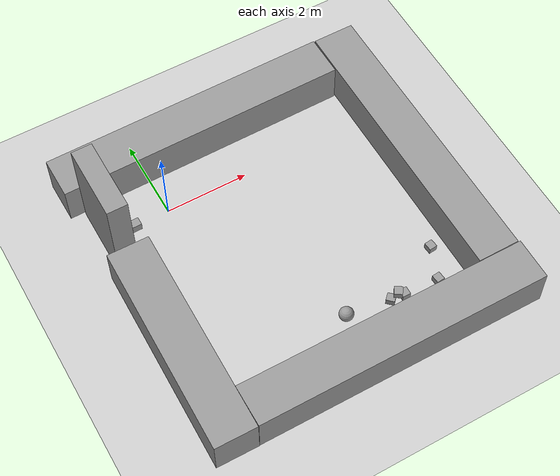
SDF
<sdf version="1.6">
 <world name="default">
  <light name="sun" type="directional">
   <pose>0 0 10 0 -0 0</pose>
   <diffuse>0.8 0.8 0.8 1</diffuse>
   <specular>0.1 0.1 0.1 1</specular>
   <attenuation>
    <range>1000</range>
    <constant>0.9</constant>
    <linear>0.01</linear>
    <quadratic>0.001</quadratic>
   </attenuation>
   <direction>-0.5 0.5 -1</direction>
  </light>
  <model name="ground_plane">
   <static>1</static>
   <link name="link">
    <collision name="collision">
     <geometry><plane><normal>0 0 1</normal><size>100 100</size></plane></geometry>
     <surface><friction><ode><mu>100</mu><mu2>50</mu2></ode></friction></surface>
    </collision>
    <visual name="visual">
     <cast_shadows>0</cast_shadows>
     <geometry><plane><normal>0 0 1</normal><size>100 100</size></plane></geometry>
     <material>
      <script><uri>file://media/materials/scripts/gazebo.material</uri><name>Gazebo/Grey</name></script>
     </material>
    </visual>
   </link>
  </model>
  <gravity>0 0 -9.8</gravity>
  <magnetic_field>6e-06 2.3e-05 -4.2e-05</magnetic_field>
  <atmosphere type="adiabatic"/>
  <physics name="default_physics" default="0" type="ode">
   <max_step_size>0.001</max_step_size>
   <real_time_factor>1</real_time_factor>
   <real_time_update_rate>1000</real_time_update_rate>
  </physics>
  <scene><ambient>0.4 0.4 0.4 1</ambient><background>0.7 0.7 0.7 1</background><shadows>1</shadows></scene>
  <spherical_coordinates>
   <surface_model>EARTH_WGS84</surface_model>
   <latitude_deg>0</latitude_deg>
   <longitude_deg>0</longitude_deg>
   <elevation>0</elevation>
   <heading_deg>0</heading_deg>
  </spherical_coordinates>
  <model name="unit_box_0_clone_0">
   <pose>2.56567 -5.54084 0.499757 -0 6.9e-05 -0.004372</pose>
   <link name="link">
    <inertial>
     <mass>1</mass>
     <inertia><ixx>0</ixx><ixy>0</ixy><ixz>0</ixz><iyy>0</iyy><iyz>0</iyz><izz>0</izz></inertia>
    </inertial>
    <collision name="collision"><geometry><box><size>6.99949 1 1</size></box></geometry></collision>
    <visual name="visual">
     <geometry><box><size>6.99949 1 1</size></box></geometry>
     <material>
      <script><name>Gazebo/Grey</name><uri>file://media/materials/scripts/gazebo.material</uri></script>
     </material>
    </visual>
   </link>
  </model>
  <model name="unit_box_0_clone_clone">
   <pose>5.51923 -1.53915 0.499757 0 6.9e-05 -1.56895</pose>
   <link name="link">
    <inertial>
     <mass>1</mass>
     <inertia><ixx>0</ixx><ixy>0</ixy><ixz>0</ixz><iyy>0</iyy><iyz>0</iyz><izz>0</izz></inertia>
    </inertial>
    <collision name="collision"><geometry><box><size>6.99949 1 1</size></box></geometry></collision>
    <visual name="visual">
     <geometry><box><size>6.99949 1 1</size></box></geometry>
     <material>
      <script><name>Gazebo/Grey</name><uri>file://media/materials/scripts/gazebo.material</uri></script>
     </material>
    </visual>
   </link>
  </model>
  <model name="unit_box_1_clone">
   <pose>3.51932 -4.52257 0.082723 -6e-06 -1.6e-05 -0.029664</pose>
   <link name="link">
    <inertial>
     <mass>1</mass>
     <inertia>
      <ixx>0.166667</ixx>
      <ixy>0</ixy>
      <ixz>0</ixz>
      <iyy>0.166667</iyy>
      <iyz>0</iyz>
      <izz>0.166667</izz>
     </inertia>
    </inertial>
    <collision name="collision"><geometry><box><size>0.191631 0.199809 0.1656</size></box></geometry></collision>
    <visual name="visual">
     <geometry><box><size>0.191631 0.199809 0.1656</size></box></geometry>
     <material>
      <script><name>Gazebo/Grey</name><uri>file://media/materials/scripts/gazebo.material</uri></script>
     </material>
    </visual>
   </link>
  </model>
  <model name="unit_box_1_clone_clone">
   <pose>3.36288 -4.49652 0.248361 -6e-05 0.000337 -0.591259</pose>
   <link name="unit_box_1_clone_clone::unit_box_1_clone_clone::unit_box_1_clone_clone::unit_box_1_clone_clone::unit_box_1_clone_clone::link">
    <inertial>
     <mass>1</mass>
     <inertia>
      <ixx>0.166667</ixx>
      <ixy>0</ixy>
      <ixz>0</ixz>
      <iyy>0.166667</iyy>
      <iyz>0</iyz>
      <izz>0.166667</izz>
     </inertia>
    </inertial>
    <collision name="collision"><geometry><box><size>0.191631 0.199809 0.1656</size></box></geometry></collision>
    <visual name="visual">
     <geometry><box><size>0.191631 0.199809 0.1656</size></box></geometry>
     <material>
      <script><name>Gazebo/Grey</name><uri>file://media/materials/scripts/gazebo.material</uri></script>
     </material>
    </visual>
   </link>
  </model>
  <model name="unit_sphere_0">
   <pose>2.1278 -4.36385 0.170052 -0.01416 0.000776 0.003057</pose>
   <link name="link">
    <inertial>
     <mass>1</mass>
     <inertia><ixx>0.1</ixx><ixy>0</ixy><ixz>0</ixz><iyy>0.1</iyy><iyz>0</iyz><izz>0.1</izz></inertia>
    </inertial>
    <collision name="collision"><geometry><sphere><radius>0.170052</radius></sphere></geometry></collision>
    <visual name="visual">
     <geometry><sphere><radius>0.170052</radius></sphere></geometry>
     <material>
      <script><name>Gazebo/Grey</name><uri>file://media/materials/scripts/gazebo.material</uri></script>
     </material>
    </visual>
   </link>
  </model>
  <model name="unit_box_1_clone_clone_clone">
   <pose>3.1899 -4.49168 0.082783 5e-06 5e-06 0.795116</pose>
   <link name="unit_box_1_clone_clone::unit_box_1_clone_clone::link">
    <inertial>
     <mass>1</mass>
     <inertia>
      <ixx>0.166667</ixx>
      <ixy>0</ixy>
      <ixz>0</ixz>
      <iyy>0.166667</iyy>
      <iyz>0</iyz>
      <izz>0.166667</izz>
     </inertia>
    </inertial>
    <collision name="collision"><geometry><box><size>0.191631 0.199809 0.1656</size></box></geometry></collision>
    <visual name="visual">
     <geometry><box><size>0.191631 0.199809 0.1656</size></box></geometry>
     <material>
      <script><name>Gazebo/Grey</name><uri>file://media/materials/scripts/gazebo.material</uri></script>
     </material>
    </visual>
   </link>
  </model>
  <model name="unit_box_1_clone_clone_clone_0">
   <pose>4.36148 -4.57856 0.082799 -2e-06 5e-06 0.090681</pose>
   <link name="unit_box_1_clone_clone::unit_box_1_clone_clone::link">
    <inertial>
     <mass>1</mass>
     <inertia>
      <ixx>0.166667</ixx>
      <ixy>0</ixy>
      <ixz>0</ixz>
      <iyy>0.166667</iyy>
      <iyz>0</iyz>
      <izz>0.166667</izz>
     </inertia>
    </inertial>
    <collision name="collision"><geometry><box><size>0.191631 0.199809 0.1656</size></box></geometry></collision>
    <visual name="visual">
     <geometry><box><size>0.191631 0.199809 0.1656</size></box></geometry>
     <material>
      <script><name>Gazebo/Grey</name><uri>file://media/materials/scripts/gazebo.material</uri></script>
     </material>
    </visual>
   </link>
  </model>
  <model name="unit_box_1_clone_clone_clone_1">
   <pose>4.66889 -3.79634 0.082799 4e-06 2e-06 0.091041</pose>
   <link name="unit_box_1_clone_clone::unit_box_1_clone_clone::link">
    <inertial>
     <mass>1</mass>
     <inertia>
      <ixx>0.166667</ixx>
      <ixy>0</ixy>
      <ixz>0</ixz>
      <iyy>0.166667</iyy>
      <iyz>0</iyz>
      <izz>0.166667</izz>
     </inertia>
    </inertial>
    <collision name="collision"><geometry><box><size>0.191631 0.199809 0.1656</size></box></geometry></collision>
    <visual name="visual">
     <geometry><box><size>0.191631 0.199809 0.1656</size></box></geometry>
     <material>
      <script><name>Gazebo/Grey</name><uri>file://media/materials/scripts/gazebo.material</uri></script>
     </material>
    </visual>
   </link>
  </model>
  <model name="unit_box_2">
   <pose>-1.41375 -3.49749 0.499995 1e-06 3e-06 -0.012882</pose>
   <link name="link">
    <inertial>
     <mass>1</mass>
     <inertia>
      <ixx>0.166667</ixx>
      <ixy>0</ixy>
      <ixz>0</ixz>
      <iyy>0.166667</iyy>
      <iyz>0</iyz>
      <izz>0.166667</izz>
     </inertia>
    </inertial>
    <collision name="collision"><geometry><box><size>1 5.05969 1</size></box></geometry></collision>
    <visual name="visual">
     <geometry><box><size>1 5.05969 1</size></box></geometry>
     <material>
      <script><name>Gazebo/Grey</name><uri>file://media/materials/scripts/gazebo.material</uri></script>
     </material>
    </visual>
   </link>
  </model>
  <model name="unit_box_0_clone_0_clone">
   <pose>1.48433 1.44464 0.499996 0 1e-06 0.00839</pose>
   <link name="link">
    <inertial>
     <mass>1</mass>
     <inertia><ixx>0</ixx><ixy>0</ixy><ixz>0</ixz><iyy>0</iyy><iyz>0</iyz><izz>0</izz></inertia>
    </inertial>
    <collision name="collision"><geometry><box><size>6.99949 1 1</size></box></geometry></collision>
    <visual name="visual">
     <geometry><box><size>6.99949 1 1</size></box></geometry>
     <material>
      <script><name>Gazebo/Grey</name><uri>file://media/materials/scripts/gazebo.material</uri></script>
     </material>
    </visual>
   </link>
  </model>
  <model name="unit_box_0">
   <pose>-1.42427 -0.028463 1.21559 -4e-06 -1e-06 2e-05</pose>
   <link name="unit_box_0::link">
    <inertial>
     <mass>1</mass>
     <inertia>
      <ixx>0.166667</ixx>
      <ixy>0</ixy>
      <ixz>0</ixz>
      <iyy>0.166667</iyy>
      <iyz>0</iyz>
      <izz>0.166667</izz>
     </inertia>
    </inertial>
    <collision name="collision"><geometry><box><size>0.487774 1.77265 2.43119</size></box></geometry></collision>
    <visual name="visual">
     <geometry><box><size>0.487774 1.77265 2.43119</size></box></geometry>
     <material>
      <script><name>Gazebo/Grey</name><uri>file://media/materials/scripts/gazebo.material</uri></script>
     </material>
    </visual>
   </link>
  </model>
  <model name="unit_box_1">
   <pose>-1.05257 -0.721728 1.23516 0 -0 0</pose>
   <link name="unit_box_1::link">
    <inertial>
     <mass>1</mass>
     <inertia>
      <ixx>0.166667</ixx>
      <ixy>0</ixy>
      <ixz>0</ixz>
      <iyy>0.166667</iyy>
      <iyz>0</iyz>
      <izz>0.166667</izz>
     </inertia>
    </inertial>
    <collision name="collision">
     <geometry><box><size>0.238713 0.191816 0.190692</size></box></geometry>
    </collision>
    <visual name="visual">
     <geometry><box><size>0.238713 0.191816 0.190692</size></box></geometry>
     <material>
      <script><name>Gazebo/Grey</name><uri>file://media/materials/scripts/gazebo.material</uri></script>
     </material>
    </visual>
    <gravity>0</gravity>
   </link>
  </model>
 </world>
</sdf>
